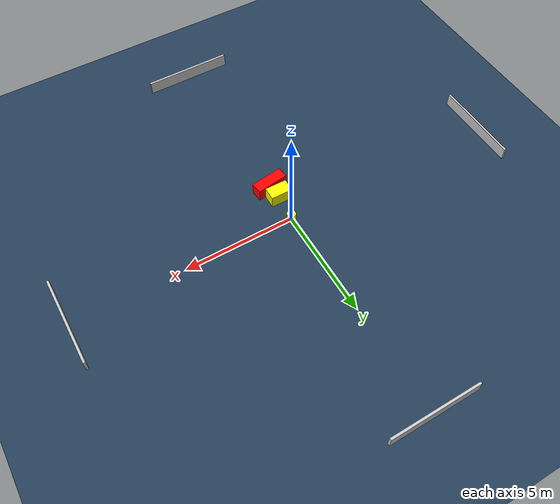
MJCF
<?xml version="1.0" ?>
<mujoco model="generated_environment">
  <option timestep="0.01" integrator="RK4" cone="elliptic"/>
  <default>
    <geom density="1"/>
  </default>
  <asset>
    <texture builtin="gradient" height="3072" name="skybox" rgb1="0.3 0.5 0.7" rgb2="0 0 0" type="skybox" width="512"/>
    <texture builtin="checker" height="300" name="groundplane" rgb1="0.2 0.3 0.4" rgb2="0.1 0.2 0.3" type="2d" width="300"/>
    <material name="groundplane" reflectance="0.2" texrepeat="5 5" texture="groundplane"/>
  </asset>
  <worldbody>
    <light dir="0 0 -1" directional="true" pos="0 0 1.5"/>
    <geom condim="3" friction="0.5 0.005 0.001" material="groundplane" name="floor" pos="0 0 0" size="0 0 0.05" type="plane"/>
    <body name="walls">
      <geom name="wall_1" condim="4" pos="-10.0 0.0 0.3" rgba="0.800000011920929 0.800000011920929 0.800000011920929 1.0" size="0.05 2.0 0.3" type="box"/>
      <geom name="wall_2" condim="4" pos="10.0 0.0 0.3" rgba="0.800000011920929 0.800000011920929 0.800000011920929 1.0" size="0.05 2.0 0.3" type="box"/>
      <geom name="wall_3" condim="4" pos="0.0 -10.0 0.3" rgba="0.800000011920929 0.800000011920929 0.800000011920929 1.0" size="2.0 0.05 0.3" type="box"/>
      <geom name="wall_4" condim="4" pos="0.0 10.0 0.3" rgba="0.800000011920929 0.800000011920929 0.800000011920929 1.0" size="2.0 0.05 0.3" type="box"/>
    </body>
    <body name="robot">
      <joint name="joint_x" type="slide" pos="0 0 0" axis="1 0 0"/>
      <joint name="joint_y" type="slide" pos="0 0 0" axis="0 1 0"/>
      <geom name="robot" type="cylinder" pos="0.0 0.0 0.2" size="0.2 0.2 0.0" mass="5.0" friction="1.0 0.005 0.0001" condim="4" rgba="1.0 1.0 0.0 1.0"/>
    </body>
    <body name="obstacle_1_movable">
      <geom name="obstacle_1_movable" condim="4" pos="-0.12053382970764584 -1.2652532520669422 0.3" euler="0 0 359.02947423618366" friction="0.0 0.005 0.001" rgba="1.0 1.0 0.0 1.0" size="0.493972833424931 0.29778533154548553 0.3" type="box" mass="0.1"/>
      <joint type="free"/>
    </body>
    <body name="obstacle_2_static">
      <geom name="obstacle_2_static" condim="4" pos="-0.02001674381658609 -1.9071584550625094 0.3" euler="0 0 187.6143434820732" friction="0.0 0.005 0.001" rgba="1.0 0.0 0.0 1.0" size="0.7241699293557322 0.2557165360471284 0.3" type="box"/>
    </body>
  </worldbody>
  <actuator>
    <motor name="actuator_x" joint="joint_x" gear="1" ctrlrange="-1 1"/>
    <motor name="actuator_y" joint="joint_y" gear="1" ctrlrange="-1 1"/>
  </actuator>
</mujoco>
